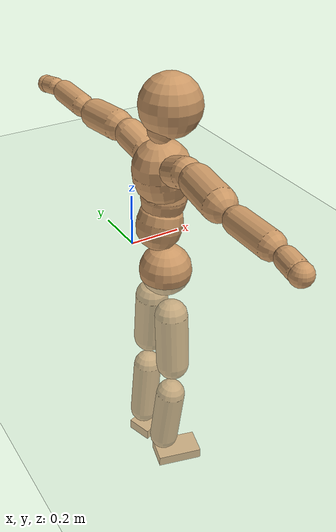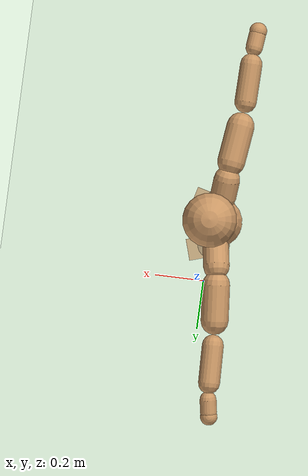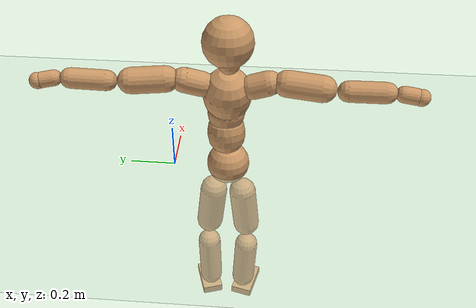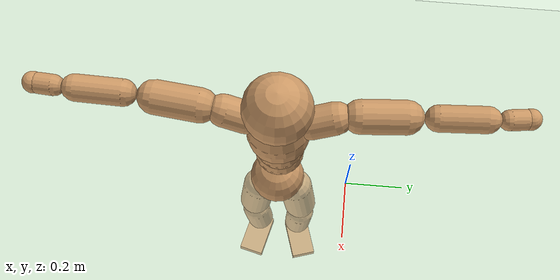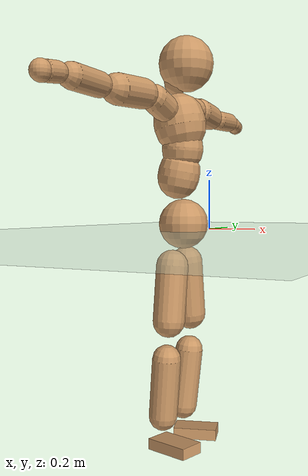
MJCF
<mujoco model="humanoid">
  <compiler coordinate="local"/>
  <default>
    <joint damping="0.0" armature="0.01" stiffness="0.0" limited="true"/>
    <geom conaffinity="1" condim="3" contype="7" margin="0.001" rgba="0.8 0.6 .4 1"/>
  </default>
  <asset>
    <texture type="skybox" builtin="gradient" rgb1=".4 .5 .6" rgb2="0 0 0" width="100" height="100"/>
    <texture builtin="flat" height="1278" mark="cross" markrgb="1 1 1" name="texgeom" random="0.01" rgb1="0.8 0.6 0.4" rgb2="0.8 0.6 0.4" type="cube" width="127"/>
    <texture builtin="checker" height="100" name="texplane" rgb1="0 0 0" rgb2="0.8 0.8 0.8" type="2d" width="100"/>
    <material name="MatPlane" reflectance="0.5" shininess="1" specular="1" texrepeat="60 60" texture="texplane"/>
    <material name="geom" texture="texgeom" texuniform="true"/>
  </asset>
  <worldbody>
    <light cutoff="100" diffuse="1 1 1" dir="-0 0 -1.3" directional="true" exponent="1" pos="0 0 1.3" specular=".1 .1 .1"/>
    <geom conaffinity="1" condim="3" name="floor" pos="0 0 0" rgba="0.8 0.9 0.8 1" size="100 100 .2" type="plane" material="MatPlane"/>
    <body name="Pelvis" pos="-0.0023 -0.2434 0.0263">
      <freejoint name="Pelvis"/>
      <geom type="sphere" contype="1" conaffinity="1" density="500" size="0.0946" pos="0.0000 0.0000 0.0000" name="Pelvis"/>
      <body name="L_Hip" pos="-0.0175 0.0576 -0.0799">
        <joint name="L_Hip_x" type="hinge" pos="0 0 0" axis="1 0 0" stiffness="800" damping="80" armature="0.02" range="-180.0000 180.0000"/>
        <joint name="L_Hip_y" type="hinge" pos="0 0 0" axis="0 1 0" stiffness="800" damping="80" armature="0.02" range="-180.0000 180.0000"/>
        <joint name="L_Hip_z" type="hinge" pos="0 0 0" axis="0 0 1" stiffness="800" damping="80" armature="0.02" range="-180.0000 180.0000"/>
        <geom type="capsule" contype="1" conaffinity="1" density="500" fromto="0.0013 0.0075 -0.0699 0.0052 0.0298 -0.2797" size="0.0609" name="L_Hip"/>
        <body name="L_Knee" pos="0.0065 0.0373 -0.3496">
          <joint name="L_Knee_x" type="hinge" pos="0 0 0" axis="1 0 0" stiffness="800" damping="80" armature="0.02" range="-180.0000 180.0000"/>
          <joint name="L_Knee_y" type="hinge" pos="0 0 0" axis="0 1 0" stiffness="800" damping="80" armature="0.02" range="-180.0000 180.0000"/>
          <joint name="L_Knee_z" type="hinge" pos="0 0 0" axis="0 0 1" stiffness="800" damping="80" armature="0.02" range="-180.0000 180.0000"/>
          <geom type="capsule" contype="1" conaffinity="1" density="500" fromto="-0.0073 -0.0028 -0.0758 -0.0294 -0.0113 -0.3032" size="0.0541" name="L_Knee"/>
          <body name="L_Ankle" pos="-0.0367 -0.0141 -0.379">
            <joint name="L_Ankle_x" type="hinge" pos="0 0 0" axis="1 0 0" stiffness="800" damping="80" armature="0.02" range="-180.0000 180.0000"/>
            <joint name="L_Ankle_y" type="hinge" pos="0 0 0" axis="0 1 0" stiffness="800" damping="80" armature="0.02" range="-180.0000 180.0000"/>
            <joint name="L_Ankle_z" type="hinge" pos="0 0 0" axis="0 0 1" stiffness="800" damping="80" armature="0.02" range="-180.0000 180.0000"/>
            <geom type="box" contype="1" conaffinity="1" density="500" pos="0.0576 0.0178 -0.0274" size="0.0841 0.0486 0.0211" quat="0.9888 0.0000 0.0000 0.1491" name="L_Ankle"/>
            <body name="L_Toe" pos="0.1152 0.0355 -0.0549">
              <joint name="L_Toe_x" type="hinge" pos="0 0 0" axis="1 0 0" stiffness="500" damping="50" armature="0.02" range="-180.0000 180.0000"/>
              <joint name="L_Toe_y" type="hinge" pos="0 0 0" axis="0 1 0" stiffness="500" damping="50" armature="0.02" range="-180.0000 180.0000"/>
              <joint name="L_Toe_z" type="hinge" pos="0 0 0" axis="0 0 1" stiffness="500" damping="50" armature="0.02" range="-180.0000 180.0000"/>
              <geom type="box" contype="1" conaffinity="1" density="500" pos="0.0000 0.0000 0.0262" size="0.0011 0.0024 0.001" quat="0.9880 0.0000 0.0000 0.1544" name="L_Toe"/>
            </body>
          </body>
        </body>
      </body>
      <body name="R_Hip" pos="-0.013 -0.0599 -0.0877">
        <joint name="R_Hip_x" type="hinge" pos="0 0 0" axis="1 0 0" stiffness="800" damping="80" armature="0.02" range="-180.0000 180.0000"/>
        <joint name="R_Hip_y" type="hinge" pos="0 0 0" axis="0 1 0" stiffness="800" damping="80" armature="0.02" range="-180.0000 180.0000"/>
        <joint name="R_Hip_z" type="hinge" pos="0 0 0" axis="0 0 1" stiffness="800" damping="80" armature="0.02" range="-180.0000 180.0000"/>
        <geom type="capsule" contype="1" conaffinity="1" density="500" fromto="-0.0010 -0.0073 -0.0694 -0.0038 -0.0292 -0.2777" size="0.0606" name="R_Hip"/>
        <body name="R_Knee" pos="-0.0048 -0.0365 -0.3471">
          <joint name="R_Knee_x" type="hinge" pos="0 0 0" axis="1 0 0" stiffness="800" damping="80" armature="0.02" range="-180.0000 180.0000"/>
          <joint name="R_Knee_y" type="hinge" pos="0 0 0" axis="0 1 0" stiffness="800" damping="80" armature="0.02" range="-180.0000 180.0000"/>
          <joint name="R_Knee_z" type="hinge" pos="0 0 0" axis="0 0 1" stiffness="800" damping="80" armature="0.02" range="-180.0000 180.0000"/>
          <geom type="capsule" contype="1" conaffinity="1" density="500" fromto="-0.0068 0.0035 -0.0745 -0.0271 0.0141 -0.2979" size="0.0544" name="R_Knee"/>
          <body name="R_Ankle" pos="-0.0339 0.0176 -0.3723">
            <joint name="R_Ankle_x" type="hinge" pos="0 0 0" axis="1 0 0" stiffness="800" damping="80" armature="0.02" range="-180.0000 180.0000"/>
            <joint name="R_Ankle_y" type="hinge" pos="0 0 0" axis="0 1 0" stiffness="800" damping="80" armature="0.02" range="-180.0000 180.0000"/>
            <joint name="R_Ankle_z" type="hinge" pos="0 0 0" axis="0 0 1" stiffness="800" damping="80" armature="0.02" range="-180.0000 180.0000"/>
            <geom type="box" contype="1" conaffinity="1" density="500" pos="0.0614 -0.0156 -0.0281" size="0.0854 0.0503 0.0208" quat="0.9923 0.0000 0.0000 -0.1239" name="R_Ankle"/>
            <body name="R_Toe" pos="0.1228 -0.0312 -0.0563">
              <joint name="R_Toe_x" type="hinge" pos="0 0 0" axis="1 0 0" stiffness="500" damping="50" armature="0.02" range="-180.0000 180.0000"/>
              <joint name="R_Toe_y" type="hinge" pos="0 0 0" axis="0 1 0" stiffness="500" damping="50" armature="0.02" range="-180.0000 180.0000"/>
              <joint name="R_Toe_z" type="hinge" pos="0 0 0" axis="0 0 1" stiffness="500" damping="50" armature="0.02" range="-180.0000 180.0000"/>
              <geom type="box" contype="1" conaffinity="1" density="500" pos="0.0000 0.0000 0.0288" size="0.0011 0.0025 0.0011" quat="0.9934 0.0000 0.0000 -0.1145" name="R_Toe"/>
            </body>
          </body>
        </body>
      </body>
      <body name="Torso" pos="-0.0364 0.004 0.1204">
        <joint name="Torso_x" type="hinge" pos="0 0 0" axis="1 0 0" stiffness="1000" damping="100" armature="0.02" range="-180.0000 180.0000"/>
        <joint name="Torso_y" type="hinge" pos="0 0 0" axis="0 1 0" stiffness="1000" damping="100" armature="0.02" range="-180.0000 180.0000"/>
        <joint name="Torso_z" type="hinge" pos="0 0 0" axis="0 0 1" stiffness="1000" damping="100" armature="0.02" range="-180.0000 180.0000"/>
        <geom type="capsule" contype="1" conaffinity="1" density="500" fromto="0.0162 0.0029 0.0823 0.0108 0.0019 0.0549" size="0.0802" name="Torso"/>
        <body name="Spine" pos="0.0269 0.0049 0.1371">
          <joint name="Spine_x" type="hinge" pos="0 0 0" axis="1 0 0" stiffness="1000" damping="100" armature="0.02" range="-180.0000 180.0000"/>
          <joint name="Spine_y" type="hinge" pos="0 0 0" axis="0 1 0" stiffness="1000" damping="100" armature="0.02" range="-180.0000 180.0000"/>
          <joint name="Spine_z" type="hinge" pos="0 0 0" axis="0 0 1" stiffness="1000" damping="100" armature="0.02" range="-180.0000 180.0000"/>
          <geom type="capsule" contype="1" conaffinity="1" density="500" fromto="0.0026 -0.0011 0.0334 0.0017 -0.0008 0.0223" size="0.0791" name="Spine"/>
          <body name="Chest" pos="0.0043 -0.0019 0.0556">
            <joint name="Chest_x" type="hinge" pos="0 0 0" axis="1 0 0" stiffness="1000" damping="100" armature="0.02" range="-180.0000 180.0000"/>
            <joint name="Chest_y" type="hinge" pos="0 0 0" axis="0 1 0" stiffness="1000" damping="100" armature="0.02" range="-180.0000 180.0000"/>
            <joint name="Chest_z" type="hinge" pos="0 0 0" axis="0 0 1" stiffness="1000" damping="100" armature="0.02" range="-180.0000 180.0000"/>
            <geom type="capsule" contype="1" conaffinity="1" density="500" fromto="-0.0155 -0.0051 0.0838 -0.0103 -0.0034 0.0559" size="0.0999" name="Chest"/>
            <body name="Neck" pos="-0.0348 -0.0137 0.2031">
              <joint name="Neck_x" type="hinge" pos="0 0 0" axis="1 0 0" stiffness="500" damping="50" armature="0.02" range="-180.0000 180.0000"/>
              <joint name="Neck_y" type="hinge" pos="0 0 0" axis="0 1 0" stiffness="500" damping="50" armature="0.02" range="-180.0000 180.0000"/>
              <joint name="Neck_z" type="hinge" pos="0 0 0" axis="0 0 1" stiffness="500" damping="50" armature="0.02" range="-180.0000 180.0000"/>
              <geom type="capsule" contype="1" conaffinity="1" density="500" fromto="0.0098 0.0019 0.0174 0.0392 0.0077 0.0695" size="0.0449" name="Neck"/>
              <body name="Head" pos="0.049 0.0096 0.0869">
                <joint name="Head_x" type="hinge" pos="0 0 0" axis="1 0 0" stiffness="500" damping="50" armature="0.02" range="-180.0000 180.0000"/>
                <joint name="Head_y" type="hinge" pos="0 0 0" axis="0 1 0" stiffness="500" damping="50" armature="0.02" range="-180.0000 180.0000"/>
                <joint name="Head_z" type="hinge" pos="0 0 0" axis="0 0 1" stiffness="500" damping="50" armature="0.02" range="-180.0000 180.0000"/>
                <geom type="sphere" contype="1" conaffinity="1" density="500" size="0.1045" pos="0.0000 0.0000 0.0000" name="Head"/>
              </body>
            </body>
            <body name="L_Thorax" pos="-0.0186 0.0699 0.1086">
              <joint name="L_Thorax_x" type="hinge" pos="0 0 0" axis="1 0 0" stiffness="500" damping="50" armature="0.02" range="-180.0000 180.0000"/>
              <joint name="L_Thorax_y" type="hinge" pos="0 0 0" axis="0 1 0" stiffness="500" damping="50" armature="0.02" range="-180.0000 180.0000"/>
              <joint name="L_Thorax_z" type="hinge" pos="0 0 0" axis="0 0 1" stiffness="500" damping="50" armature="0.02" range="-180.0000 180.0000"/>
              <geom type="capsule" contype="1" conaffinity="1" density="500" fromto="-0.0041 0.0245 0.0083 -0.0163 0.0980 0.0332" size="0.0514" name="L_Thorax"/>
              <body name="L_Shoulder" pos="-0.0204 0.1225 0.0414">
                <joint name="L_Shoulder_x" type="hinge" pos="0 0 0" axis="1 0 0" stiffness="500" damping="50" armature="0.02" range="-720.0000 720.0000"/>
                <joint name="L_Shoulder_y" type="hinge" pos="0 0 0" axis="0 1 0" stiffness="500" damping="50" armature="0.02" range="-720.0000 720.0000"/>
                <joint name="L_Shoulder_z" type="hinge" pos="0 0 0" axis="0 0 1" stiffness="500" damping="50" armature="0.02" range="-720.0000 720.0000"/>
                <geom type="capsule" contype="1" conaffinity="1" density="500" fromto="-0.0041 0.0465 -0.0024 -0.0164 0.1860 -0.0094" size="0.0538" name="L_Shoulder"/>
                <body name="L_Elbow" pos="-0.0204 0.2324 -0.0118">
                  <joint name="L_Elbow_x" type="hinge" pos="0 0 0" axis="1 0 0" stiffness="500" damping="50" armature="0.02" range="-720.0000 720.0000"/>
                  <joint name="L_Elbow_y" type="hinge" pos="0 0 0" axis="0 1 0" stiffness="500" damping="50" armature="0.02" range="-720.0000 720.0000"/>
                  <joint name="L_Elbow_z" type="hinge" pos="0 0 0" axis="0 0 1" stiffness="500" damping="50" armature="0.02" range="-720.0000 720.0000"/>
                  <geom type="capsule" contype="1" conaffinity="1" density="500" fromto="-0.0014 0.0486 0.0021 -0.0057 0.1943 0.0086" size="0.042" name="L_Elbow"/>
                  <body name="L_Wrist" pos="-0.0072 0.2428 0.0107">
                    <joint name="L_Wrist_x" type="hinge" pos="0 0 0" axis="1 0 0" stiffness="300" damping="30" armature="0.02" range="-180.0000 180.0000"/>
                    <joint name="L_Wrist_y" type="hinge" pos="0 0 0" axis="0 1 0" stiffness="300" damping="30" armature="0.02" range="-180.0000 180.0000"/>
                    <joint name="L_Wrist_z" type="hinge" pos="0 0 0" axis="0 0 1" stiffness="300" damping="30" armature="0.02" range="-180.0000 180.0000"/>
                    <geom type="capsule" contype="1" conaffinity="1" density="500" fromto="-0.0029 0.0163 -0.0020 -0.0115 0.0653 -0.0081" size="0.0326" name="L_Wrist"/>
                    <body name="L_Hand" pos="-0.0144 0.0817 -0.0102">
                      <joint name="L_Hand_x" type="hinge" pos="0 0 0" axis="1 0 0" stiffness="300" damping="30" armature="0.02" range="-180.0000 180.0000"/>
                      <joint name="L_Hand_y" type="hinge" pos="0 0 0" axis="0 1 0" stiffness="300" damping="30" armature="0.02" range="-180.0000 180.0000"/>
                      <joint name="L_Hand_z" type="hinge" pos="0 0 0" axis="0 0 1" stiffness="300" damping="30" armature="0.02" range="-180.0000 180.0000"/>
                      <geom type="sphere" contype="1" conaffinity="1" density="500" size="0.0337" pos="0.0000 0.0000 0.0000" name="L_Hand"/>
                    </body>
                  </body>
                </body>
              </body>
            </body>
            <body name="R_Thorax" pos="-0.0238 -0.0819 0.1075">
              <joint name="R_Thorax_x" type="hinge" pos="0 0 0" axis="1 0 0" stiffness="500" damping="50" armature="0.02" range="-180.0000 180.0000"/>
              <joint name="R_Thorax_y" type="hinge" pos="0 0 0" axis="0 1 0" stiffness="500" damping="50" armature="0.02" range="-180.0000 180.0000"/>
              <joint name="R_Thorax_z" type="hinge" pos="0 0 0" axis="0 0 1" stiffness="500" damping="50" armature="0.02" range="-180.0000 180.0000"/>
              <geom type="capsule" contype="1" conaffinity="1" density="500" fromto="-0.0020 -0.0224 0.0085 -0.0079 -0.0898 0.0340" size="0.0513" name="R_Thorax"/>
              <body name="R_Shoulder" pos="-0.0098 -0.1122 0.0425">
                <joint name="R_Shoulder_x" type="hinge" pos="0 0 0" axis="1 0 0" stiffness="500" damping="50" armature="0.02" range="-720.0000 720.0000"/>
                <joint name="R_Shoulder_y" type="hinge" pos="0 0 0" axis="0 1 0" stiffness="500" damping="50" armature="0.02" range="-720.0000 720.0000"/>
                <joint name="R_Shoulder_z" type="hinge" pos="0 0 0" axis="0 0 1" stiffness="500" damping="50" armature="0.02" range="-720.0000 720.0000"/>
                <geom type="capsule" contype="1" conaffinity="1" density="500" fromto="-0.0060 -0.0474 -0.0017 -0.0240 -0.1894 -0.0069" size="0.0543" name="R_Shoulder"/>
                <body name="R_Elbow" pos="-0.03 -0.2368 -0.0087">
                  <joint name="R_Elbow_x" type="hinge" pos="0 0 0" axis="1 0 0" stiffness="500" damping="50" armature="0.02" range="-720.0000 720.0000"/>
                  <joint name="R_Elbow_y" type="hinge" pos="0 0 0" axis="0 1 0" stiffness="500" damping="50" armature="0.02" range="-720.0000 720.0000"/>
                  <joint name="R_Elbow_z" type="hinge" pos="0 0 0" axis="0 0 1" stiffness="500" damping="50" armature="0.02" range="-720.0000 720.0000"/>
                  <geom type="capsule" contype="1" conaffinity="1" density="500" fromto="-0.0010 -0.0490 0.0008 -0.0042 -0.1961 0.0034" size="0.0427" name="R_Elbow"/>
                  <body name="R_Wrist" pos="-0.0052 -0.2451 0.0042">
                    <joint name="R_Wrist_x" type="hinge" pos="0 0 0" axis="1 0 0" stiffness="300" damping="30" armature="0.02" range="-180.0000 180.0000"/>
                    <joint name="R_Wrist_y" type="hinge" pos="0 0 0" axis="0 1 0" stiffness="300" damping="30" armature="0.02" range="-180.0000 180.0000"/>
                    <joint name="R_Wrist_z" type="hinge" pos="0 0 0" axis="0 0 1" stiffness="300" damping="30" armature="0.02" range="-180.0000 180.0000"/>
                    <geom type="capsule" contype="1" conaffinity="1" density="500" fromto="-0.0019 -0.0168 -0.0017 -0.0074 -0.0670 -0.0066" size="0.0334" name="R_Wrist"/>
                    <body name="R_Hand" pos="-0.0093 -0.0838 -0.0083">
                      <joint name="R_Hand_x" type="hinge" pos="0 0 0" axis="1 0 0" stiffness="300" damping="30" armature="0.02" range="-180.0000 180.0000"/>
                      <joint name="R_Hand_y" type="hinge" pos="0 0 0" axis="0 1 0" stiffness="300" damping="30" armature="0.02" range="-180.0000 180.0000"/>
                      <joint name="R_Hand_z" type="hinge" pos="0 0 0" axis="0 0 1" stiffness="300" damping="30" armature="0.02" range="-180.0000 180.0000"/>
                      <geom type="sphere" contype="1" conaffinity="1" density="500" size="0.0343" pos="0.0000 0.0000 0.0000" name="R_Hand"/>
                    </body>
                  </body>
                </body>
              </body>
            </body>
          </body>
        </body>
      </body>
    </body>
  </worldbody>
  <actuator>
    <motor name="L_Hip_x" joint="L_Hip_x" gear="500"/>
    <motor name="L_Hip_y" joint="L_Hip_y" gear="500"/>
    <motor name="L_Hip_z" joint="L_Hip_z" gear="500"/>
    <motor name="L_Knee_x" joint="L_Knee_x" gear="500"/>
    <motor name="L_Knee_y" joint="L_Knee_y" gear="500"/>
    <motor name="L_Knee_z" joint="L_Knee_z" gear="500"/>
    <motor name="L_Ankle_x" joint="L_Ankle_x" gear="500"/>
    <motor name="L_Ankle_y" joint="L_Ankle_y" gear="500"/>
    <motor name="L_Ankle_z" joint="L_Ankle_z" gear="500"/>
    <motor name="L_Toe_x" joint="L_Toe_x" gear="500"/>
    <motor name="L_Toe_y" joint="L_Toe_y" gear="500"/>
    <motor name="L_Toe_z" joint="L_Toe_z" gear="500"/>
    <motor name="R_Hip_x" joint="R_Hip_x" gear="500"/>
    <motor name="R_Hip_y" joint="R_Hip_y" gear="500"/>
    <motor name="R_Hip_z" joint="R_Hip_z" gear="500"/>
    <motor name="R_Knee_x" joint="R_Knee_x" gear="500"/>
    <motor name="R_Knee_y" joint="R_Knee_y" gear="500"/>
    <motor name="R_Knee_z" joint="R_Knee_z" gear="500"/>
    <motor name="R_Ankle_x" joint="R_Ankle_x" gear="500"/>
    <motor name="R_Ankle_y" joint="R_Ankle_y" gear="500"/>
    <motor name="R_Ankle_z" joint="R_Ankle_z" gear="500"/>
    <motor name="R_Toe_x" joint="R_Toe_x" gear="500"/>
    <motor name="R_Toe_y" joint="R_Toe_y" gear="500"/>
    <motor name="R_Toe_z" joint="R_Toe_z" gear="500"/>
    <motor name="Torso_x" joint="Torso_x" gear="500"/>
    <motor name="Torso_y" joint="Torso_y" gear="500"/>
    <motor name="Torso_z" joint="Torso_z" gear="500"/>
    <motor name="Spine_x" joint="Spine_x" gear="500"/>
    <motor name="Spine_y" joint="Spine_y" gear="500"/>
    <motor name="Spine_z" joint="Spine_z" gear="500"/>
    <motor name="Chest_x" joint="Chest_x" gear="500"/>
    <motor name="Chest_y" joint="Chest_y" gear="500"/>
    <motor name="Chest_z" joint="Chest_z" gear="500"/>
    <motor name="Neck_x" joint="Neck_x" gear="500"/>
    <motor name="Neck_y" joint="Neck_y" gear="500"/>
    <motor name="Neck_z" joint="Neck_z" gear="500"/>
    <motor name="Head_x" joint="Head_x" gear="500"/>
    <motor name="Head_y" joint="Head_y" gear="500"/>
    <motor name="Head_z" joint="Head_z" gear="500"/>
    <motor name="L_Thorax_x" joint="L_Thorax_x" gear="500"/>
    <motor name="L_Thorax_y" joint="L_Thorax_y" gear="500"/>
    <motor name="L_Thorax_z" joint="L_Thorax_z" gear="500"/>
    <motor name="L_Shoulder_x" joint="L_Shoulder_x" gear="500"/>
    <motor name="L_Shoulder_y" joint="L_Shoulder_y" gear="500"/>
    <motor name="L_Shoulder_z" joint="L_Shoulder_z" gear="500"/>
    <motor name="L_Elbow_x" joint="L_Elbow_x" gear="500"/>
    <motor name="L_Elbow_y" joint="L_Elbow_y" gear="500"/>
    <motor name="L_Elbow_z" joint="L_Elbow_z" gear="500"/>
    <motor name="L_Wrist_x" joint="L_Wrist_x" gear="500"/>
    <motor name="L_Wrist_y" joint="L_Wrist_y" gear="500"/>
    <motor name="L_Wrist_z" joint="L_Wrist_z" gear="500"/>
    <motor name="L_Hand_x" joint="L_Hand_x" gear="500"/>
    <motor name="L_Hand_y" joint="L_Hand_y" gear="500"/>
    <motor name="L_Hand_z" joint="L_Hand_z" gear="500"/>
    <motor name="R_Thorax_x" joint="R_Thorax_x" gear="500"/>
    <motor name="R_Thorax_y" joint="R_Thorax_y" gear="500"/>
    <motor name="R_Thorax_z" joint="R_Thorax_z" gear="500"/>
    <motor name="R_Shoulder_x" joint="R_Shoulder_x" gear="500"/>
    <motor name="R_Shoulder_y" joint="R_Shoulder_y" gear="500"/>
    <motor name="R_Shoulder_z" joint="R_Shoulder_z" gear="500"/>
    <motor name="R_Elbow_x" joint="R_Elbow_x" gear="500"/>
    <motor name="R_Elbow_y" joint="R_Elbow_y" gear="500"/>
    <motor name="R_Elbow_z" joint="R_Elbow_z" gear="500"/>
    <motor name="R_Wrist_x" joint="R_Wrist_x" gear="500"/>
    <motor name="R_Wrist_y" joint="R_Wrist_y" gear="500"/>
    <motor name="R_Wrist_z" joint="R_Wrist_z" gear="500"/>
    <motor name="R_Hand_x" joint="R_Hand_x" gear="500"/>
    <motor name="R_Hand_y" joint="R_Hand_y" gear="500"/>
    <motor name="R_Hand_z" joint="R_Hand_z" gear="500"/>
  </actuator>
  <contact>
    <exclude body1="Torso" body2="Chest"/>
    <exclude body1="Head" body2="Chest"/>
    <exclude body1="R_Knee" body2="R_Toe"/>
    <exclude body1="R_Knee" body2="L_Ankle"/>
    <exclude body1="R_Knee" body2="L_Toe"/>
    <exclude body1="L_Knee" body2="L_Toe"/>
    <exclude body1="L_Knee" body2="R_Ankle"/>
    <exclude body1="L_Knee" body2="R_Toe"/>
    <exclude body1="L_Shoulder" body2="Chest"/>
    <exclude body1="R_Shoulder" body2="Chest"/>
  </contact>
  <sensor/>
  <size njmax="700" nconmax="700"/>
</mujoco>
